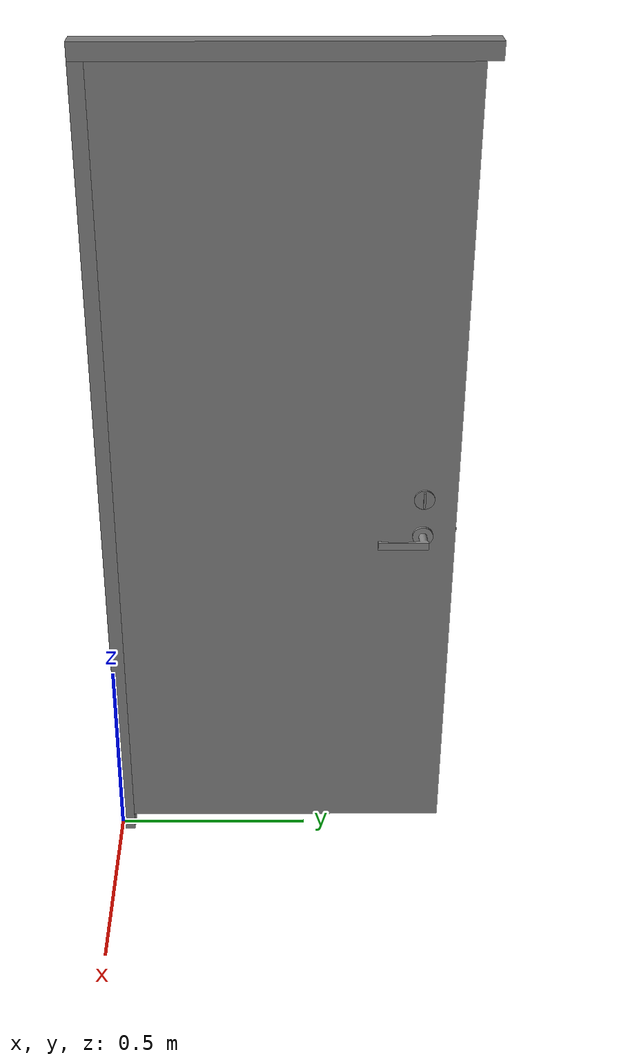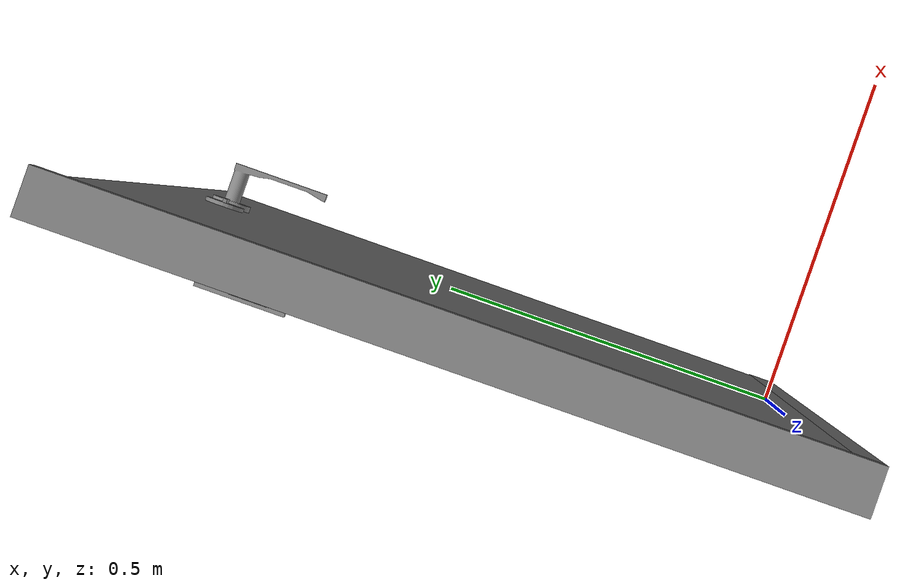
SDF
<?xml version="1.0" ?>
<sdf version="1.4">
    <model name='openable_hinged_door_z_reversely'>
      <joint name="frame_to_world_joint" type="revolute">
          <parent>world</parent>
          <child>frame</child>
          <!-- Mimic fixed joint  -->
          <pose>0 -0.45 0 0 0 0</pose>
          <axis>
              <xyz>0 0 1</xyz>
              <limit>
                  <lower>0</lower>
                  <upper>0</upper>
              </limit>
          </axis>
      </joint>
      <link name='frame'>
        <pose>0 0.45 0 0 0 0</pose>
        <visual name='left_frame'>
          <pose>0 -0.4325 1.025 0 0 0</pose>
          <geometry>
            <box>
              <size>0.055 0.035 2.050</size>
            </box>
          </geometry>
          <material>
            <!-- hsr_color/white -->
            <name>white</name>
            <ambient>1 1 1 1</ambient>
            <diffuse>0.5 0.5 0.5 1</diffuse>
            <specular>0 0 0 1</specular>
            <emissive>0 0 0 1</emissive>
            <shading>gouraud</shading>
            <receive_shadows>on</receive_shadows>
          </material>
        </visual>
        <collision name='collision_left_frame'>
          <pose>0 -0.4325 1.025 0 0 0</pose>
          <geometry>
            <box>
              <size>0.055 0.035 2.050</size>
            </box>
          </geometry>
          <max_contacts>10</max_contacts>
          <surface>
            <bounce/>
            <friction>
              <ode/>
            </friction>
            <contact>
              <ode/>
            </contact>
          </surface>
        </collision>
        <visual name='top_frame'>
          <pose>0 0 2.070 0 0 0</pose>
          <geometry>
            <box>
              <size>0.055 0.9 0.04</size>
            </box>
          </geometry>
          <material>
            <!-- hsr_color/white -->
            <name>white</name>
            <ambient>1 1 1 1</ambient>
            <diffuse>0.5 0.5 0.5 1</diffuse>
            <specular>0 0 0 1</specular>
            <emissive>0 0 0 1</emissive>
            <shading>gouraud</shading>
            <receive_shadows>on</receive_shadows>
          </material>
        </visual>
        <collision name='collision_top_frame'>
          <pose>0 0 2.070 0 0 0</pose>
          <geometry>
            <box>
              <size>0.055 0.9 0.04</size>
            </box>
          </geometry>
          <max_contacts>10</max_contacts>
          <surface>
            <bounce/>
            <friction>
              <ode/>
            </friction>
            <contact>
              <ode/>
            </contact>
          </surface>
        </collision>
        <velocity_decay>
          <linear>0</linear>
          <angular>0</angular>
        </velocity_decay>
        <self_collide>0</self_collide>
        <kinematic>0</kinematic>
        <gravity>1</gravity>
      </link>
      <link name='door'>
        <pose>0 0 0 0 0 0</pose>
        <inertial>
          <mass>50</mass>
          <inertia>
            <ixx>14.2</ixx>
            <ixy>0</ixy>
            <ixz>0</ixz>
            <iyy>17.2</iyy>
            <iyz>0</iyz>
            <izz>3.0</izz>
          </inertia>
        </inertial>
        <visual name='door'>
          <pose>0 0.45 1.050 0 0 0</pose>
          <geometry>
            <box>
              <size>0.055 0.830 2.0</size>
            </box>
          </geometry>
          <material>
            <!-- base_materials/wood -->
            <name>wood</name>
            <ambient>1 1 1 1</ambient>
            <diffuse>0.5 0.5 0.5 1.0</diffuse>
            <specular>0 0 0 1.0</specular>
            <shininess>12.5</shininess>
            <pbr>
              <metal>
                <albedo_map>model://base_materials/wood/textures/light_wood.png</albedo_map>
                <max_anisotropy>16</max_anisotropy>
                <metalness>0</metalness>
              </metal>
            </pbr>
          </material>
        </visual>
        <collision name='collision_door'>
          <pose>0 0.45 1.050 0 0 0</pose>
          <geometry>
            <box>
              <size>0.055 0.830 2.0</size>
            </box>
          </geometry>
          <max_contacts>10</max_contacts>
          <surface>
            <bounce/>
            <friction>
              <ode/>
            </friction>
            <contact>
              <ode/>
            </contact>
          </surface>
        </collision>
        <visual name='handle_lock1'>
          <pose>0 0.785 1.03 0 0 0</pose>
          <geometry>
            <box>
              <size>0.075 0.005 0.04</size>
            </box>
          </geometry>
          <material>
            <!-- hsr_color/white -->
            <name>white</name>
            <ambient>1 1 1 1</ambient>
            <diffuse>0.5 0.5 0.5 1</diffuse>
            <specular>0 0 0 1</specular>
            <emissive>0 0 0 1</emissive>
            <shading>gouraud</shading>
            <receive_shadows>on</receive_shadows>
          </material>
        </visual>
        <visual name='handle_lock2'>
          <pose>0 0.785 1.03 0 1.5708 0</pose>
          <geometry>
            <cylinder>
              <radius>0.025</radius>
              <length>0.065</length>
            </cylinder>
          </geometry>
          <material>
            <!-- hsr_color/white -->
            <name>white</name>
            <ambient>1 1 1 1</ambient>
            <diffuse>0.5 0.5 0.5 1</diffuse>
            <specular>0 0 0 1</specular>
            <emissive>0 0 0 1</emissive>
            <shading>gouraud</shading>
            <receive_shadows>on</receive_shadows>
          </material>
        </visual>
        <velocity_decay>
          <linear>0</linear>
          <angular>0</angular>
        </velocity_decay>
        <self_collide>0</self_collide>
        <kinematic>0</kinematic>
        <gravity>1</gravity>
      </link>
      <link name='handles'>
        <pose>0.0 0.8 0.93 0 3.14 1.57</pose>
        <visual name="handle1_visual">
          <pose>0.015 0 0 -1.57 0 0</pose>
          <geometry>
            <mesh>
              <uri>model://openable_hinged_door_z_normally/meshes/door_handle_small.dae</uri>
            </mesh>
          </geometry>
        </visual>
        <collision name="handle1_collision">
          <pose>0.015 0 0 -1.57 0 0</pose>
          <geometry>
            <mesh>
              <uri>model://openable_hinged_door_z_normally/meshes/door_handle_small.dae</uri>
            </mesh>
          </geometry>
        </collision>
      </link>
      <joint name="handle" type="revolute">
        <parent>door</parent>
        <child>handles</child>
        <pose>0.013 0 0 0 0 0</pose>
        <axis>
          <xyz>1 0 0</xyz>
          <limit>
            <lower>0</lower>
            <upper>0.52</upper>
          </limit>
          <dynamics>
            <damping>0.1</damping>
            <spring_stiffness>0.3</spring_stiffness>
          </dynamics>
        </axis>
        <physics>
          <ode>
            <cfm_damping>1</cfm_damping>
          </ode>
        </physics>
      </joint>
      <joint name="hinge" type="revolute">
        <parent>frame</parent>
        <child>door</child>
        <axis>
          <xyz>0 0 1</xyz>
          <limit>
            <lower>-1.58</lower>
            <upper>0</upper>
            <effort></effort>
            <velocity></velocity>
          </limit>
          <dynamics>
            <damping>1.0</damping>
            <friction>1.0</friction>
          </dynamics>
        </axis>
        <physics>
          <ode>
            <cfm_damping>1</cfm_damping>
          </ode>
        </physics>
      </joint>
      <static>0</static>
    </model>
</sdf>
